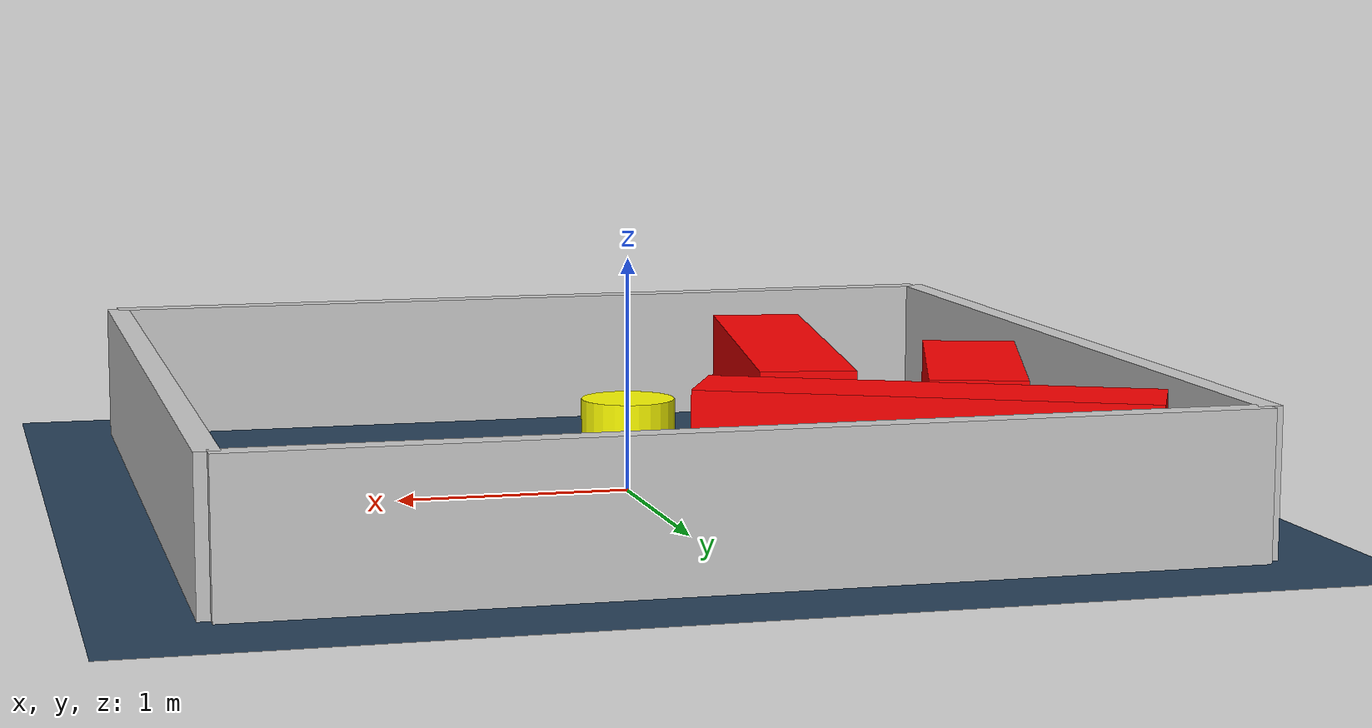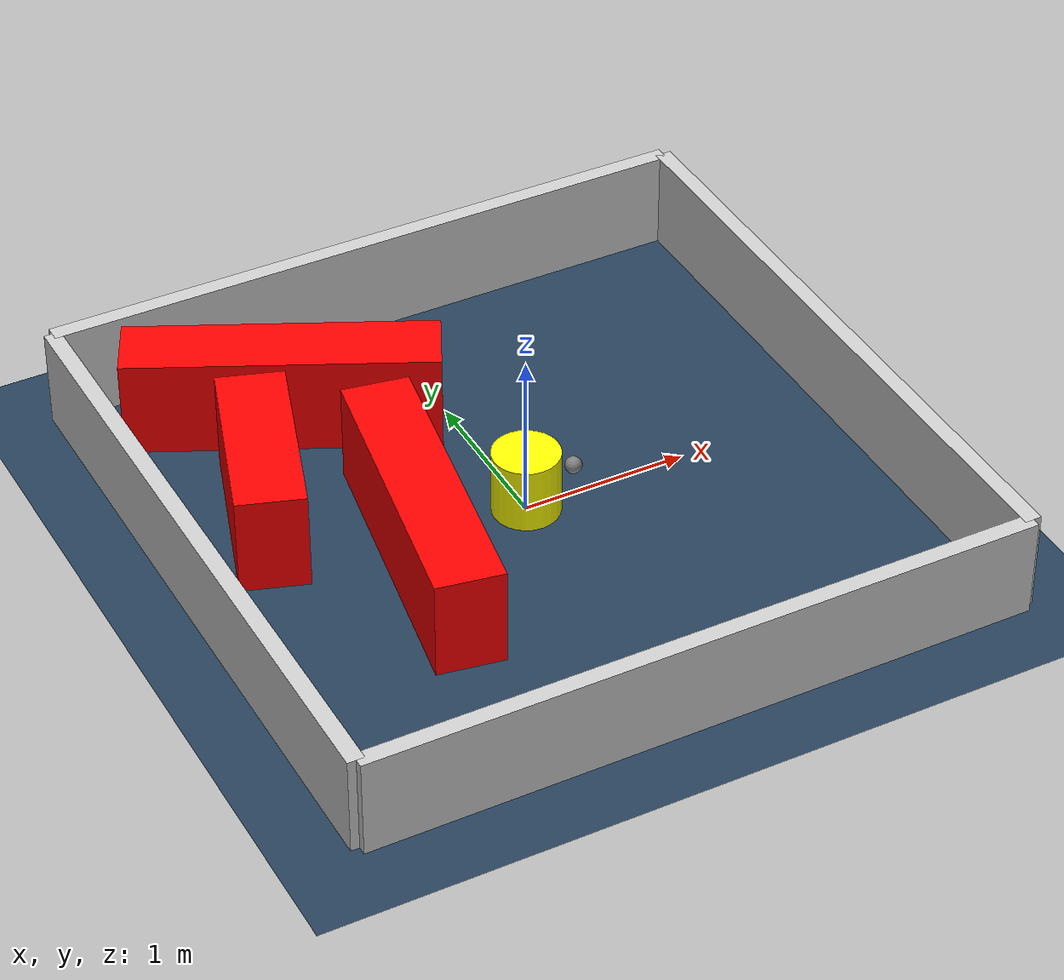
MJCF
<?xml version="1.0" ?>
<mujoco model="generated_environment">
  <option timestep="0.01" integrator="RK4" cone="elliptic"/>
  <default>
    <geom density="1"/>
  </default>
  <asset>
    <texture builtin="gradient" height="3072" rgb1="0.3 0.5 0.7" rgb2="0 0 0" type="skybox" width="512"/>
    <texture builtin="checker" height="300" mark="edge" markrgb="0.8 0.8 0.8" name="groundplane" rgb1="0.2 0.3 0.4" rgb2="0.1 0.2 0.3" type="2d" width="300"/>
    <material name="groundplane" reflectance="0.2" texrepeat="5 5" texture="groundplane" texuniform="true"/>
    <material name="robot" rgba="0.0 1.0 0.0 1"/>
  </asset>
  <worldbody>
    <light dir="0 0 -1" directional="true" pos="0 0 1.5"/>
    <geom condim="4" friction="1.0 0.005 0.001" material="groundplane" name="floor" size="0 0 0.05" type="plane"/>
    <body name="walls">
      <geom name="wall_1" condim="4" pos="-2.0 0.0 0.3" rgba="0.800000011920929 0.800000011920929 0.800000011920929 1.0" size="0.05 2.0 0.3" type="box"/>
      <geom name="wall_2" condim="4" pos="2.0 0.0 0.3" rgba="0.800000011920929 0.800000011920929 0.800000011920929 1.0" size="0.05 2.0 0.3" type="box"/>
      <geom name="wall_3" condim="4" pos="0.0 -2.0 0.3" rgba="0.800000011920929 0.800000011920929 0.800000011920929 1.0" size="2.0 0.05 0.3" type="box"/>
      <geom name="wall_4" condim="4" pos="0.0 2.0 0.3" rgba="0.800000011920929 0.800000011920929 0.800000011920929 1.0" size="2.0 0.05 0.3" type="box"/>
    </body>
    <body name="robot">
      <joint name="joint_x" type="slide" pos="0 0 0" axis="1 0 0"/>
      <joint name="joint_y" type="slide" pos="0 0 0" axis="0 1 0"/>
      <geom name="robot" type="sphere" pos="0.3 0.0 0.2" size="0.05" mass="5." friction="1.0 0.005 0.0001" condim="4" rgba="0.5 0.5 0.5 1.0"/>
      <site name="sensor_ball"/>
    </body>
    <body name="obstacle_movable_1">
      <geom name="obstacle_movable_1" condim="4" pos="0.0 0.0 0.2" euler="0 0 0.0" friction="1.0 0.005 0.001" rgba="1.0 1.0 0.0 1.0" size="0.2 0.2 0.0" type="cylinder" mass="0.1"/>
      <joint type="free"/>
    </body>
    <body name="obstacle_2_static">
      <geom name="obstacle_2_static" condim="4" pos="-0.8900244963227294 1.303284311407596 0.3" euler="0 0 154.18358925464713" friction="1.0 0.005 0.001" rgba="1 0 0 1" size="0.9130032404645672 0.2 0.3" type="box"/>
    </body>
    <body name="obstacle_3_static">
      <geom name="obstacle_3_static" condim="4" pos="-0.7307271435875178 -0.16615020548592097 0.3" euler="0 0 80.22200873699734" friction="1.0 0.005 0.001" rgba="1 0 0 1" size="0.9006576193554281 0.2 0.3" type="box"/>
    </body>
    <body name="obstacle_4_static">
      <geom name="obstacle_4_static" condim="4" pos="-1.3476714216585568 0.577326883939594 0.3" euler="0 0 71.3487938172978" friction="1.0 0.005 0.001" rgba="1 0 0 1" size="0.5783360034567473 0.2 0.3" type="box"/>
    </body>
  </worldbody>
  <actuator>
    <motor name="actuator_x" joint="joint_x" gear="1" ctrlrange="-1 1"/>
    <motor name="actuator_y" joint="joint_y" gear="1" ctrlrange="-1 1"/>
  </actuator>
</mujoco>
